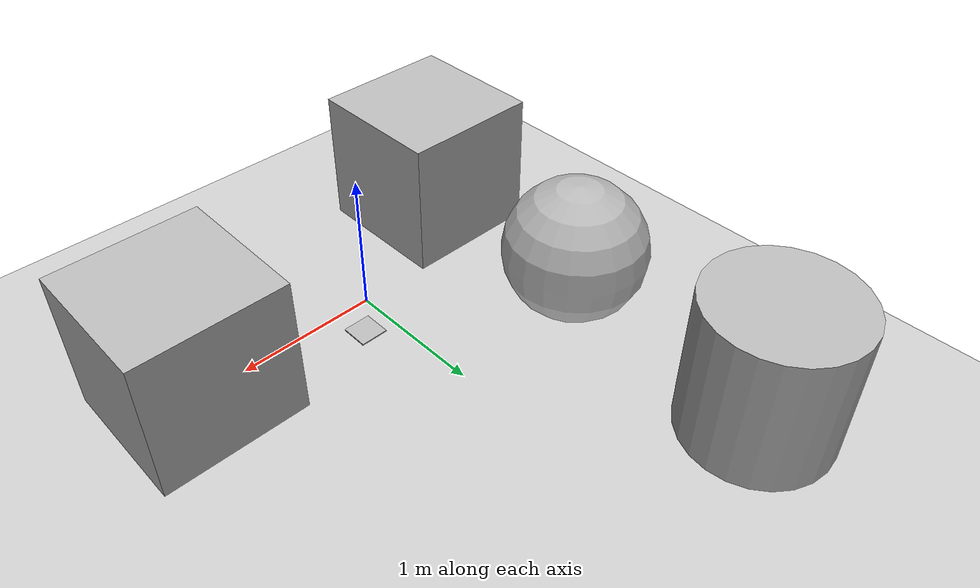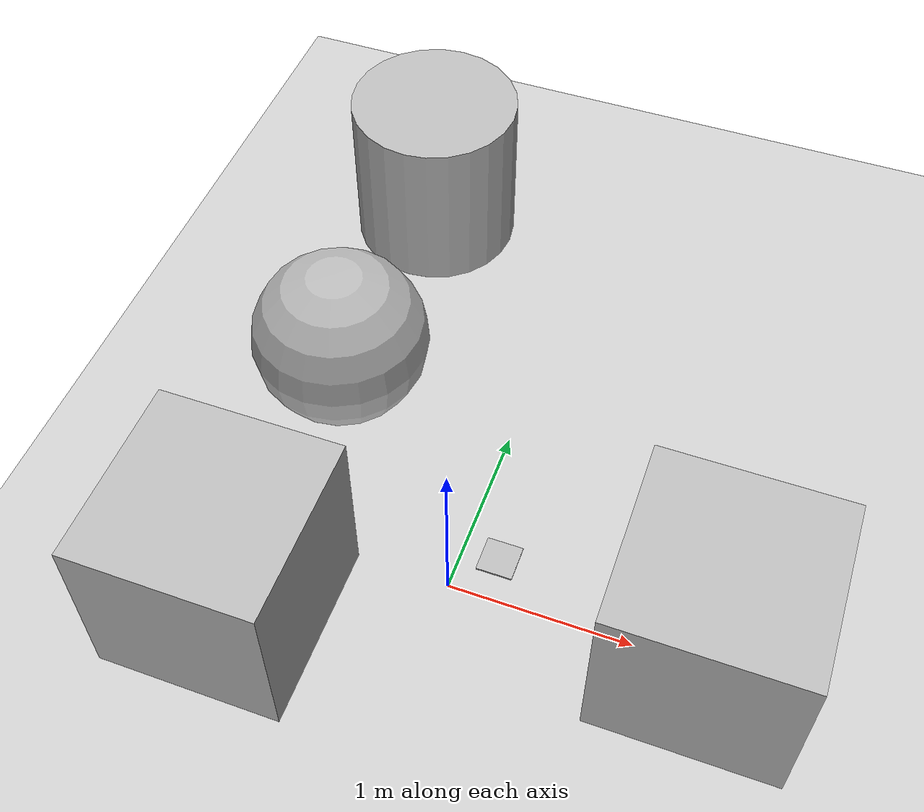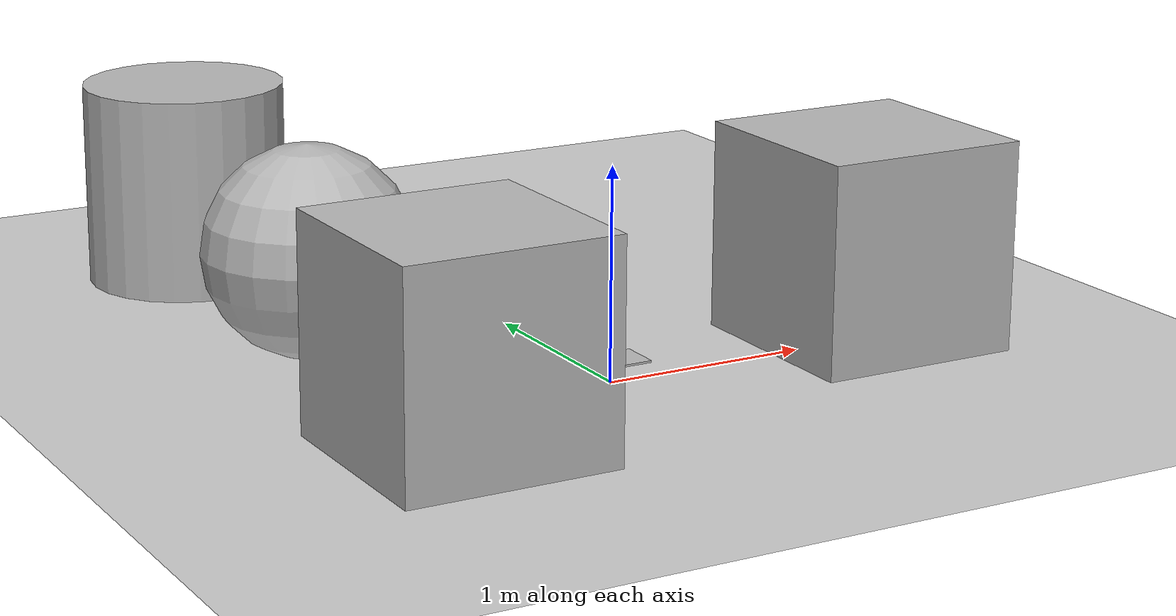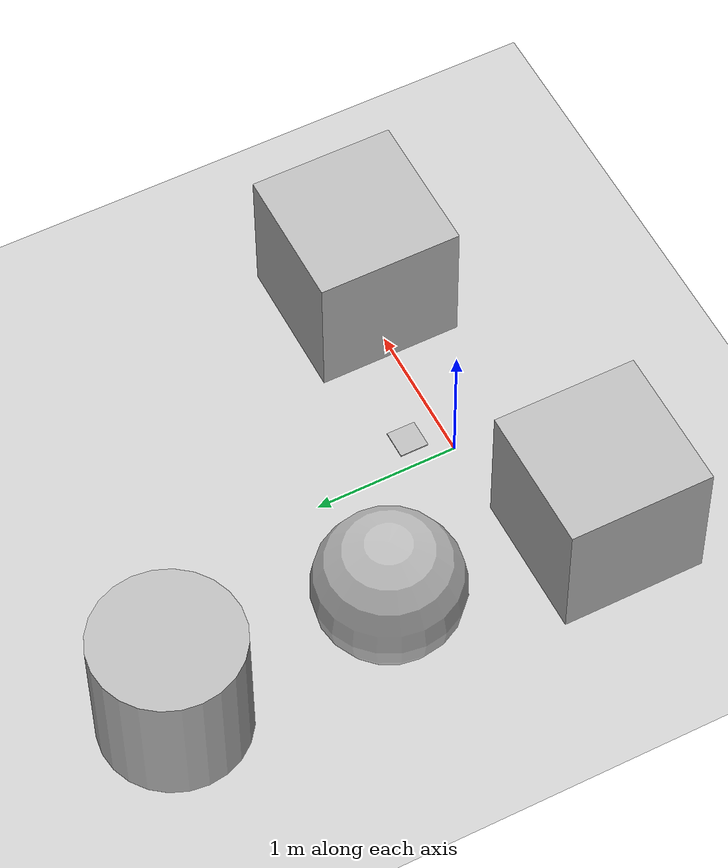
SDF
<sdf version="1.6">
 <world name="default">
  <light name="sun" type="directional">
   <pose>0 0 10 0 -0 0</pose>
   <diffuse>0.8 0.8 0.8 1</diffuse>
   <specular>0.1 0.1 0.1 1</specular>
   <attenuation>
    <range>1000</range>
    <constant>0.9</constant>
    <linear>0.01</linear>
    <quadratic>0.001</quadratic>
   </attenuation>
   <direction>-0.5 0.5 -1</direction>
  </light>
  <model name="ground_plane">
   <static>1</static>
   <link name="link">
    <collision name="collision">
     <geometry><plane><normal>0 0 1</normal><size>100 100</size></plane></geometry>
     <surface><friction><ode><mu>100</mu><mu2>50</mu2></ode></friction></surface>
    </collision>
    <visual name="visual">
     <cast_shadows>0</cast_shadows>
     <geometry><plane><normal>0 0 1</normal><size>100 100</size></plane></geometry>
     <material>
      <script><uri>file://media/materials/scripts/gazebo.material</uri><name>Gazebo/Grey</name></script>
     </material>
    </visual>
   </link>
  </model>
  <gravity>0 0 -9.8</gravity>
  <magnetic_field>6e-06 2.3e-05 -4.2e-05</magnetic_field>
  <atmosphere type="adiabatic"/>
  <physics name="default_physics" default="0" type="ode">
   <max_step_size>0.001</max_step_size>
   <real_time_factor>1</real_time_factor>
   <real_time_update_rate>1000</real_time_update_rate>
  </physics>
  <scene><ambient>0.4 0.4 0.4 1</ambient><background>0.7 0.7 0.7 1</background><shadows>1</shadows></scene>
  <spherical_coordinates>
   <surface_model>EARTH_WGS84</surface_model>
   <latitude_deg>0</latitude_deg>
   <longitude_deg>0</longitude_deg>
   <elevation>0</elevation>
   <heading_deg>0</heading_deg>
  </spherical_coordinates>
  <model name="APtag">
   <pose>0.200332 0.242897 0.01 0 -0 0</pose>
   <link name="box">
    <collision name="collision"><geometry><box><size>0.2 0.2 0.02</size></box></geometry></collision>
    <visual name="visual">
     <geometry><box><size>0.2 0.2 0.01</size></box></geometry>
     <material>
      <script>
       <uri>model://APtag/materials/scripts</uri>
       <uri>model://APtag/materials/textures</uri>
       <name>APtag/tag0</name>
      </script>
     </material>
    </visual>
    <inertial>
     <inertia><ixx>1</ixx><ixy>0</ixy><ixz>0</ixz><iyy>1</iyy><iyz>0</iyz><izz>1</izz></inertia>
     <mass>1</mass>
    </inertial>
   </link>
  </model>
  <model name="textured_shapes_c">
   <pose>1.36431 1.52173 0.5 0 -0 0</pose>
   <link name="box">
    <pose>0 -1.5 0 0 -0 0</pose>
    <collision name="collision"><geometry><box><size>1 1 1</size></box></geometry></collision>
    <visual name="visual">
     <geometry><box><size>1 1 1</size></box></geometry>
     <material>
      <script>
       <uri>model://textured_shapes(copy)/materials/scripts</uri>
       <uri>model://textured_shapes(copy)/materials/textures</uri>
       <name>TexturedShape/APtag</name>
      </script>
     </material>
    </visual>
    <inertial>
     <inertia><ixx>1</ixx><ixy>0</ixy><ixz>0</ixz><iyy>1</iyy><iyz>0</iyz><izz>1</izz></inertia>
     <mass>1</mass>
    </inertial>
   </link>
  </model>
  <model name="textured_shapes_0">
   <pose>-1.01579 1.01121 0.5 0 -0 0</pose>
   <link name="box">
    <pose>0 -1.5 0 0 -0 0</pose>
    <collision name="collision"><geometry><box><size>1 1 1</size></box></geometry></collision>
    <visual name="visual">
     <geometry><box><size>1 1 1</size></box></geometry>
     <material>
      <script>
       <uri>model://textured_shapes/materials/scripts</uri>
       <uri>model://textured_shapes/materials/textures</uri>
       <name>TexturedShape/Squares</name>
      </script>
     </material>
    </visual>
    <inertial>
     <inertia><ixx>1</ixx><ixy>0</ixy><ixz>0</ixz><iyy>1</iyy><iyz>0</iyz><izz>1</izz></inertia>
     <mass>1</mass>
    </inertial>
   </link>
   <link name="sphere">
    <collision name="collision"><geometry><sphere><radius>0.5</radius></sphere></geometry></collision>
    <visual name="visual">
     <geometry><sphere><radius>0.5</radius></sphere></geometry>
     <material>
      <script>
       <uri>model://textured_shapes/materials/scripts</uri>
       <uri>model://textured_shapes/materials/textures</uri>
       <name>TexturedShape/Squares</name>
      </script>
     </material>
    </visual>
    <inertial>
     <inertia><ixx>1</ixx><ixy>0</ixy><ixz>0</ixz><iyy>1</iyy><iyz>0</iyz><izz>1</izz></inertia>
     <mass>1</mass>
    </inertial>
   </link>
   <link name="cylinder">
    <pose>0 1.5 0 0 -0 0</pose>
    <collision name="collision">
     <geometry><cylinder><radius>0.5</radius><length>1</length></cylinder></geometry>
    </collision>
    <visual name="visual">
     <geometry><cylinder><radius>0.5</radius><length>1</length></cylinder></geometry>
     <material>
      <script>
       <uri>model://textured_shapes/materials/scripts</uri>
       <uri>model://textured_shapes/materials/textures</uri>
       <name>TexturedShape/Squares</name>
      </script>
     </material>
    </visual>
    <inertial>
     <inertia><ixx>1</ixx><ixy>0</ixy><ixz>0</ixz><iyy>1</iyy><iyz>0</iyz><izz>1</izz></inertia>
     <mass>1</mass>
    </inertial>
   </link>
  </model>
 </world>
</sdf>
